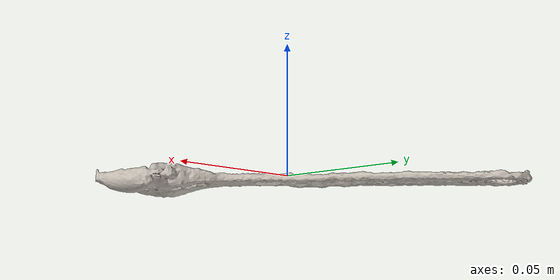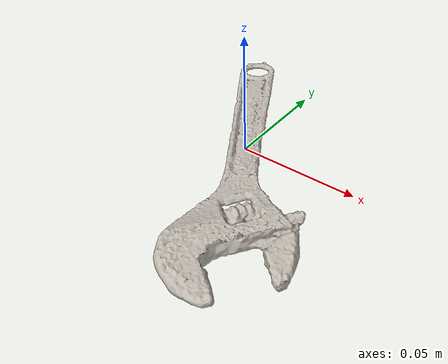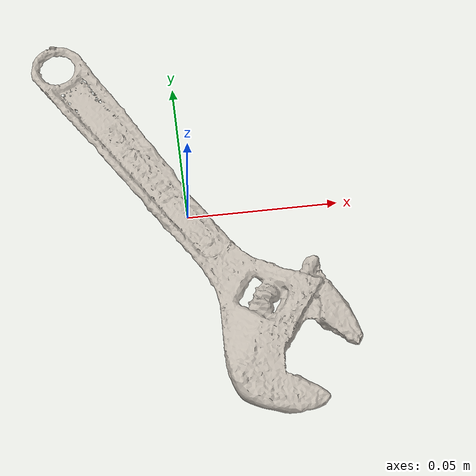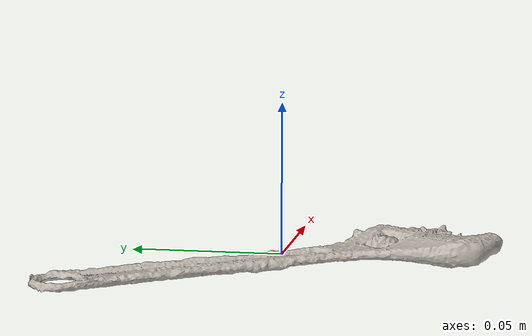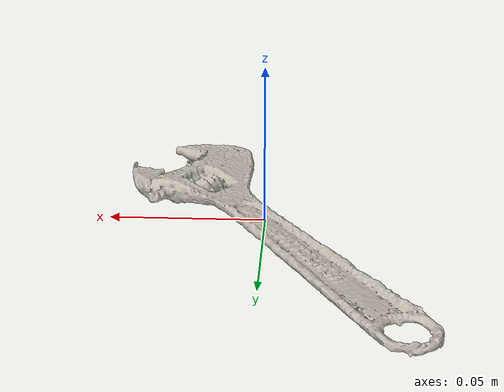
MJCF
<mujoco model="bread">
  <asset>
    <mesh file="nontextured.stl" name="obj_mesh" scale="0.8 0.8 0.8"/>
    <texture file="../../../../../textures/bread.png" type="2d" name="tex-bread" />
    <material name="bread" reflectance="0.7" texrepeat="15 15" texture="tex-bread" texuniform="true"/>
  </asset>
  <worldbody>
    <body>
      <body name="collision">
        <geom pos="0.003487500000000001 0.012345499999999995 -0.004345999999999999" mesh="obj_mesh" type="mesh" solimp="0.998 0.998 0.001" solref="0.001 1" density="50" friction="0.95 0.3 0.1"  material="bread" group="1" condim="4"/>
      </body>
      <body name="visual">
        <geom pos="0.003487500000000001 0.012345499999999995 -0.004345999999999999" mesh="obj_mesh" type="mesh" material="bread"  conaffinity="0" contype="0"  group="0" mass="0.0001"/>
        <geom pos="0.003487500000000001 0.012345499999999995 -0.004345999999999999" mesh="obj_mesh" type="mesh" material="bread"  conaffinity="0" contype="0"  group="1" mass="0.0001"/>
      </body>
      <site rgba="0 0 0 0" size="0.005" pos="0 0 -0.007327" name="bottom_site"/>
      <site rgba="0 0 0 0" size="0.005" pos="0 0 0.007327" name="top_site"/>
      <site rgba="0 0 0 0" size="0.005" pos="0.0623995 0.0905465 0.007327" name="horizontal_radius_site"/>
    </body>
  </worldbody>
</mujoco>
